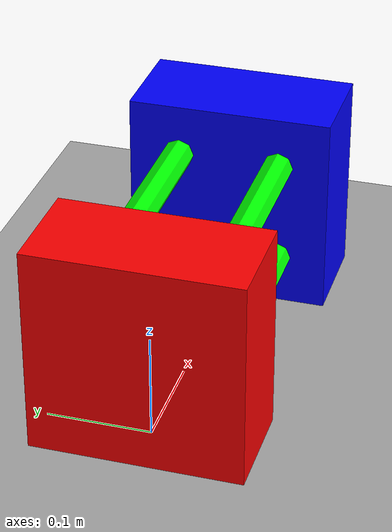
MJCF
<mujoco model="two_blocks_spring">

  <!-- Simulation Options -->
  <option timestep="0.001">
    <flag gravity="enable"/>
  </option>

  <!-- Assets -->
  <asset>
    <texture name="grid" type="2d" builtin="checker" width="300" height="300"
             rgb1="0.8 0.8 0.8" rgb2="0.5 0.5 0.5" mark="edge" markrgb="0.2 0.2 0.2"/>
    <material name="gridmat" texture="grid" texrepeat="5 5" reflectance="0.1"/>
  </asset>

  <!-- Visual Settings -->
  <visual>
    <global offwidth="800" offheight="800"/>
    <quality shadowsize="2048"/>
    <headlight ambient="0.3 0.3 0.3" diffuse="0.7 0.7 0.7" specular="0.1 0.1 0.1"/>
  </visual>

  <!-- World Body -->
  <worldbody>
    <!-- Ground Plane -->
    <geom type="plane" size="5 5 0.1" material="gridmat" friction="1 0.5 0.1"/>

    <!-- Lighting -->
    <light name="light" pos="0 0 3" dir="0 0 -1" directional="true" castshadow="true"/>

    <!-- Camera -->
    <camera name="fixed" pos="1.5 1.5 0.5" xyaxes="1 0 0 0 1 0"/>

    <!-- Block 1 (Movable) -->
    <body name="block1" pos="0 0 0.1">

      <joint name="block1_slidey" type="slide" axis="0 1 0"/>
      <joint name="block1_hinge" type="hinge" axis="1 0 0"/>
      <geom type="box" size="0.05 0.1 0.1" rgba="1 0 0 1" mass="10.0"/>
      <!-- Connection Sites -->
      <site name="site1a" pos="0.05 0.05 0.05"/>
      <site name="site2a" pos="0.05 -0.05 0.05"/>
      <site name="site3a" pos="0.05 0.05 -0.05"/>
      <site name="site4a" pos="0.05 -0.05 -0.05"/>
    </body>

    <!-- Block 2 (Movable) -->
    <body name="block2" pos="0.3 0 0.1">

      <joint name="block2_slidey" type="slide" axis="0 1 0"/>
      <joint name="block2_hinge" type="hinge" axis="1 0 0" limited="false"/>
      <geom type="box" size="0.05 0.1 0.1" rgba="0 0 1 1" mass="10.0"/>
      <!-- Connection Sites -->
      <site name="site1b" pos="-0.05 0.05 0.05"/>
      <site name="site2b" pos="-0.05 -0.05 0.05"/>
      <site name="site3b" pos="-0.05 0.05 -0.05"/>
      <site name="site4b" pos="-0.05 -0.05 -0.05"/>
    </body>
  </worldbody>

  <!-- Tendon: Springs Connecting the Blocks -->
  <tendon>
    <!-- Spring 1 -->
    <spatial name="spring1" width="0.015" rgba="0 1 0 1" stiffness="100" damping="5">
      <site site="site1a"/>
      <site site="site1b"/>
    </spatial>
    <!-- Spring 2 -->
    <spatial name="spring2" width="0.015" rgba="0 1 0 1" stiffness="100" damping="5">
      <site site="site2a"/>
      <site site="site2b"/>
    </spatial>
    <!-- Spring 3 -->
    <spatial name="spring3" width="0.015" rgba="0 1 0 1" stiffness="100" damping="5">
      <site site="site3a"/>
      <site site="site3b"/>
    </spatial>
    <!-- Spring 4 -->
    <spatial name="spring4" width="0.015" rgba="0 1 0 1" stiffness="100" damping="5">
      <site site="site4a"/>
      <site site="site4b"/>
    </spatial>
  </tendon>

  <!-- Equality Constraint: Fix Block 1 in Place -->
  <equality>
  </equality>

<actuator>
  <!-- Block 1 -->

  <motor name="block1_slide_y_motor" joint="block1_slidey" gear="1"/>
  <motor name="block1_hinge_motor"    joint="block1_hinge" gear="1"/>

  <!-- Block 2 -->

  <motor name="block2_slide_y_motor" joint="block2_slidey" gear="1"/>
  <motor name="block2_hinge_motor"    joint="block2_hinge" gear="1"/>
</actuator>

</mujoco>
